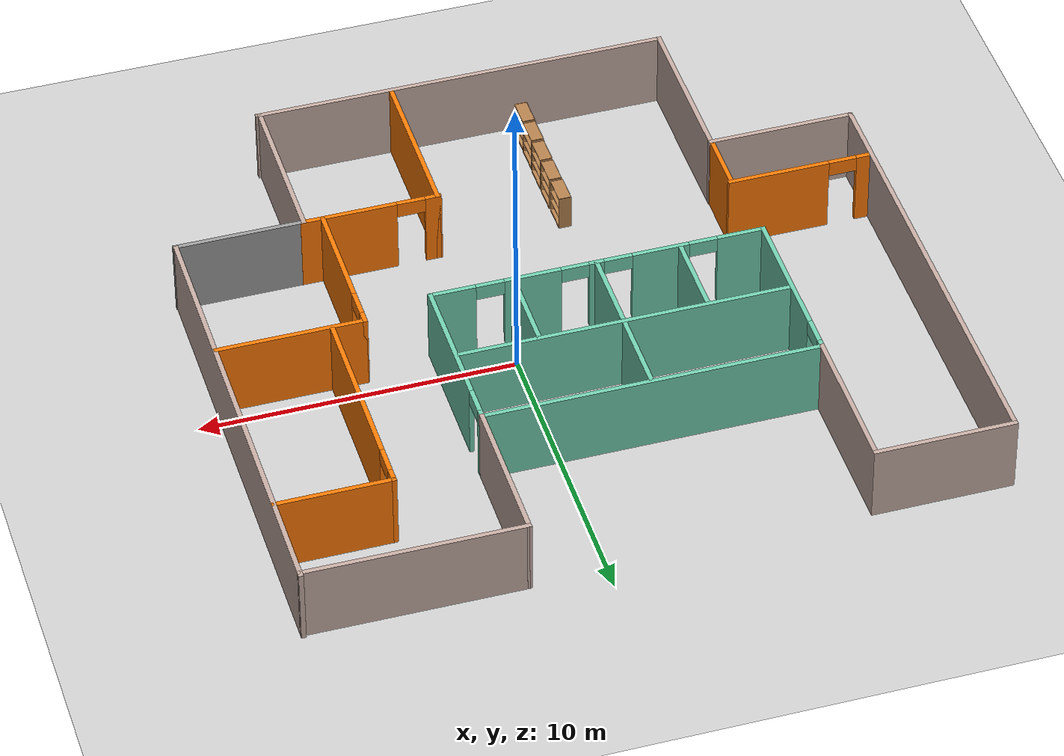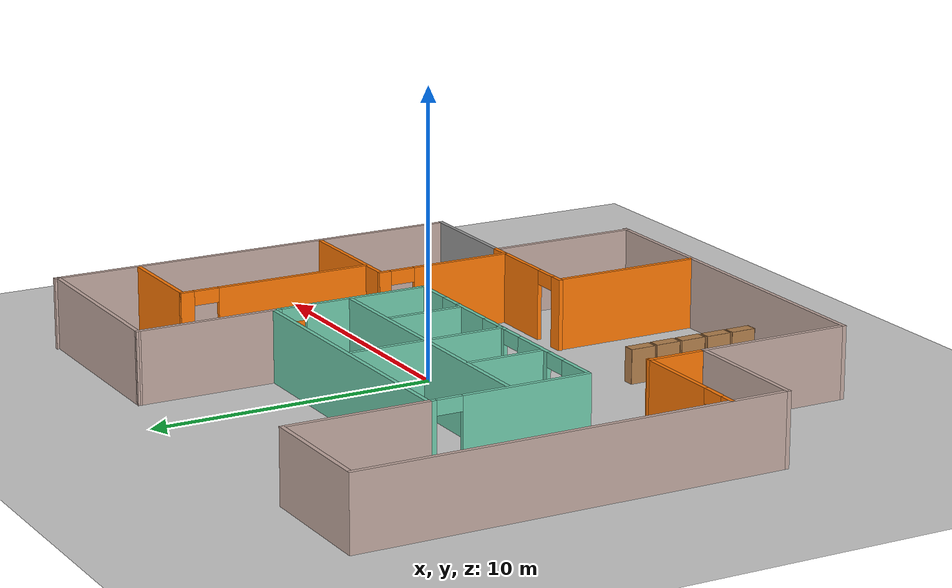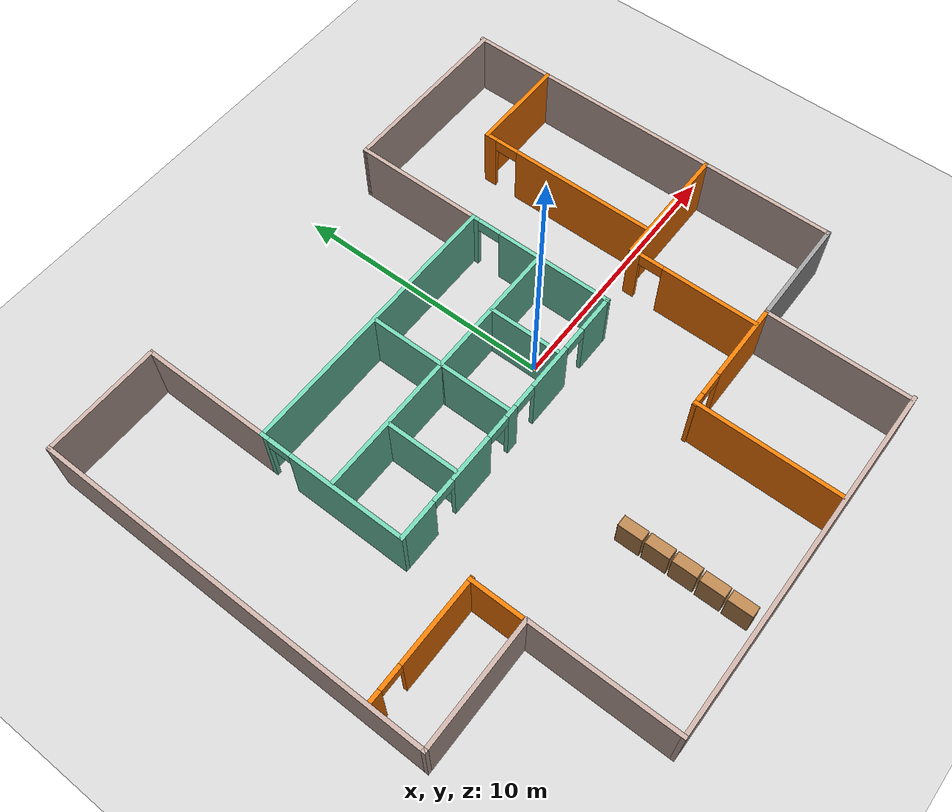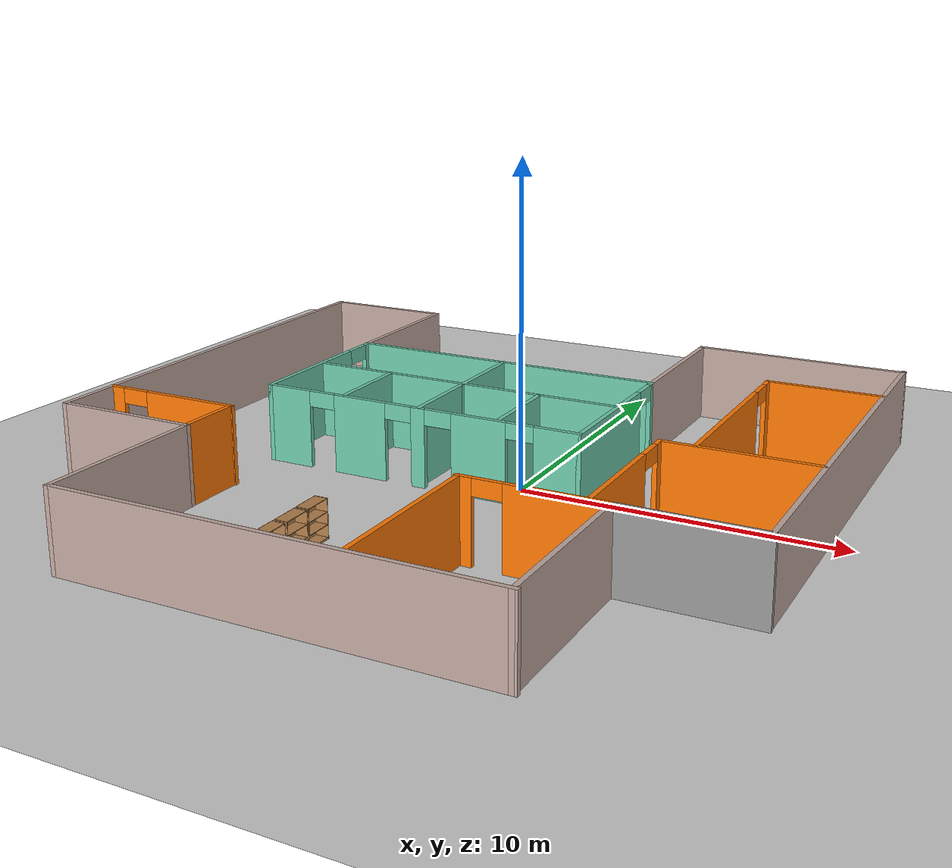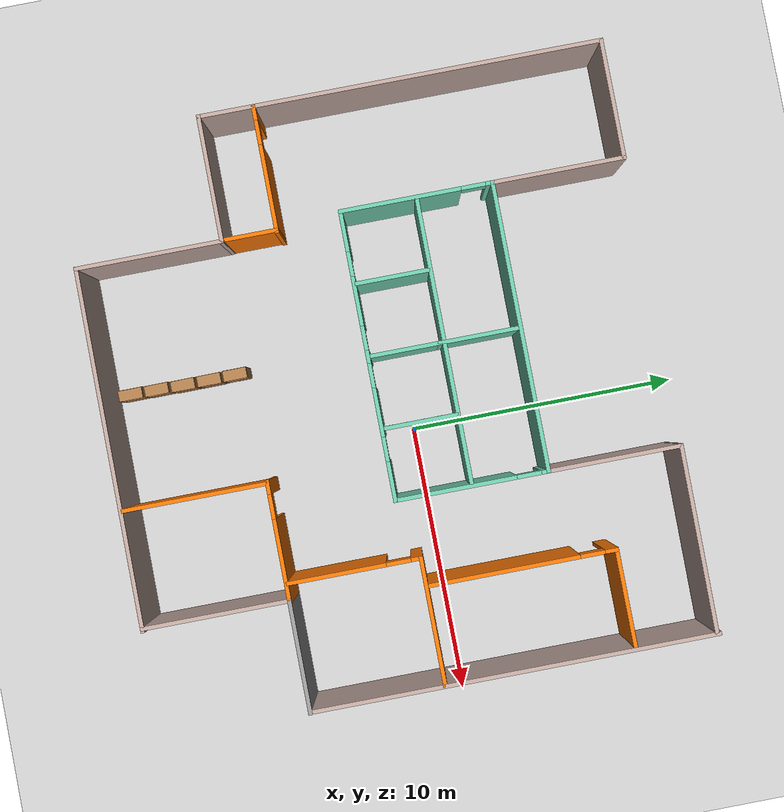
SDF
<sdf version="1.6">
 <world name="default">
  <model name="ground_plane">
   <static>1</static>
   <link name="link">
    <collision name="collision">
     <geometry><plane><normal>0 0 1</normal><size>100 100</size></plane></geometry>
     <surface>
      <contact><collide_bitmask>65535</collide_bitmask></contact>
      <friction><ode><mu>100</mu><mu2>50</mu2></ode></friction>
     </surface>
    </collision>
    <visual name="visual">
     <cast_shadows>0</cast_shadows>
     <geometry><plane><normal>0 0 1</normal><size>100 100</size></plane></geometry>
     <material>
      <script><uri>file://media/materials/scripts/gazebo.material</uri><name>Gazebo/Grey</name></script>
     </material>
    </visual>
   </link>
  </model>
  <model name="Building">
   <pose>-1.6637 -0.76117 0 0 -0 0</pose>
   <link name="Wall_35">
    <collision name="Wall_35_Collision">
     <geometry><box><size>4.5 0.15 2.5</size></box></geometry>
     <pose>0 0 1.25 0 -0 0</pose>
    </collision>
    <visual name="Wall_35_Visual">
     <pose>0 0 1.25 0 -0 0</pose>
     <geometry><box><size>4.5 0.15 2.5</size></box></geometry>
     <material>
      <script><uri>file://media/materials/scripts/gazebo.material</uri><name>Gazebo/Grey</name></script>
      <ambient>0.760784 0.662745 0.627451 1</ambient>
     </material>
     <meta><layer>0</layer></meta>
    </visual>
    <pose>-8.725 10.0804 0 0 -0 0</pose>
   </link>
   <link name="Wall_36">
    <collision name="Wall_36_Collision">
     <geometry><box><size>5 0.15 2.5</size></box></geometry>
     <pose>0 0 1.25 0 -0 0</pose>
    </collision>
    <visual name="Wall_36_Visual">
     <pose>0 0 1.25 0 -0 0</pose>
     <geometry><box><size>5 0.15 2.5</size></box></geometry>
     <material>
      <script><uri>file://media/materials/scripts/gazebo.material</uri><name>Gazebo/Grey</name></script>
      <ambient>0.760784 0.662745 0.627451 1</ambient>
     </material>
     <meta><layer>0</layer></meta>
    </visual>
    <pose>-6.55 7.65538 0 0 0 -1.5708</pose>
   </link>
   <link name="Wall_37">
    <collision name="Wall_37_Collision">
     <geometry><box><size>10.75 0.15 2.5</size></box></geometry>
     <pose>0 0 1.25 0 -0 0</pose>
    </collision>
    <visual name="Wall_37_Visual">
     <pose>0 0 1.25 0 -0 0</pose>
     <geometry><box><size>10.75 0.15 2.5</size></box></geometry>
     <material>
      <script><uri>file://media/materials/scripts/gazebo.material</uri><name>Gazebo/Grey</name></script>
      <ambient>0.435294 0.796078 0.67451 1</ambient>
     </material>
     <meta><layer>0</layer></meta>
    </visual>
    <pose>-1.25 5.23038 0 0 -0 0</pose>
   </link>
   <link name="Wall_38">
    <collision name="Wall_38_Collision">
     <geometry><box><size>5 0.15 2.5</size></box></geometry>
     <pose>0 0 1.25 0 -0 0</pose>
    </collision>
    <visual name="Wall_38_Visual">
     <pose>0 0 1.25 0 -0 0</pose>
     <geometry><box><size>5 0.15 2.5</size></box></geometry>
     <material>
      <script><uri>file://media/materials/scripts/gazebo.material</uri><name>Gazebo/Grey</name></script>
      <ambient>0.760784 0.662745 0.627451 1</ambient>
     </material>
     <meta><layer>0</layer></meta>
    </visual>
    <pose>4.05 7.65538 0 0 -0 1.5708</pose>
   </link>
   <link name="Wall_39">
    <collision name="Wall_39_Collision">
     <geometry><box><size>6.98446 0.15 2.5</size></box></geometry>
     <pose>0 0 1.25 0 -0 0</pose>
    </collision>
    <visual name="Wall_39_Visual">
     <pose>0 0 1.25 0 -0 0</pose>
     <geometry><box><size>6.98446 0.15 2.5</size></box></geometry>
     <material>
      <script><uri>file://media/materials/scripts/gazebo.material</uri><name>Gazebo/Grey</name></script>
      <ambient>0.760784 0.662745 0.627451 1</ambient>
     </material>
     <meta><layer>0</layer></meta>
    </visual>
    <pose>7.46718 10.0598 0 0 0 -0.006031</pose>
   </link>
   <link name="Wall_40">
    <collision name="Wall_40_Collision">
     <geometry><box><size>15 0.15 2.5</size></box></geometry>
     <pose>0 0 1.25 0 -0 0</pose>
    </collision>
    <visual name="Wall_40_Visual">
     <pose>0 0 1.25 0 -0 0</pose>
     <geometry><box><size>15 0.15 2.5</size></box></geometry>
     <material>
      <script><uri>file://media/materials/scripts/gazebo.material</uri><name>Gazebo/Grey</name></script>
      <ambient>0.760784 0.662745 0.627451 1</ambient>
     </material>
     <meta><layer>0</layer></meta>
    </visual>
    <pose>10.8843 2.69462 0 0 0 -1.5708</pose>
   </link>
   <link name="Wall_42">
    <collision name="Wall_42_Collision">
     <geometry><box><size>5.5 0.15 2.5</size></box></geometry>
     <pose>0 0 1.25 0 -0 0</pose>
    </collision>
    <visual name="Wall_42_Visual">
     <pose>0 0 1.25 0 -0 0</pose>
     <geometry><box><size>5.5 0.15 2.5</size></box></geometry>
     <material>
      <script><uri>file://media/materials/scripts/gazebo.material</uri><name>Gazebo/Grey</name></script>
      <ambient>0.760784 0.662745 0.627451 1</ambient>
     </material>
     <meta><layer>0</layer></meta>
    </visual>
    <pose>6.84725 -7.44462 0 0 0 -1.5708</pose>
   </link>
   <link name="Wall_43">
    <collision name="Wall_43_Collision">
     <geometry><box><size>13.368 0.15 2.5</size></box></geometry>
     <pose>0 0 1.25 0 -0 0</pose>
    </collision>
    <visual name="Wall_43_Visual">
     <pose>0 0 1.25 0 -0 0</pose>
     <geometry><box><size>13.368 0.15 2.5</size></box></geometry>
     <material>
      <script><uri>file://media/materials/scripts/gazebo.material</uri><name>Gazebo/Grey</name></script>
      <ambient>0.760784 0.662745 0.627451 1</ambient>
     </material>
     <meta><layer>0</layer></meta>
    </visual>
    <pose>0.309006 -10.1196 0 0 -0 3.14159</pose>
   </link>
   <link name="Wall_44">
    <collision name="Wall_44_Collision">
     <geometry><box><size>5.5 0.15 2.5</size></box></geometry>
     <pose>0 0 1.25 0 -0 0</pose>
    </collision>
    <visual name="Wall_44_Visual">
     <pose>0 0 1.25 0 -0 0</pose>
     <geometry><box><size>5.5 0.15 2.5</size></box></geometry>
     <material>
      <script><uri>file://media/materials/scripts/gazebo.material</uri><name>Gazebo/Grey</name></script>
      <ambient>0.760784 0.662745 0.627451 1</ambient>
     </material>
     <meta><layer>0</layer></meta>
    </visual>
    <pose>-6.3 -7.44462 0 0 -0 1.5708</pose>
   </link>
   <link name="Wall_45">
    <collision name="Wall_45_Collision">
     <geometry><box><size>4.75 0.15 2.5</size></box></geometry>
     <pose>0 0 1.25 0 -0 0</pose>
    </collision>
    <visual name="Wall_45_Visual">
     <pose>0 0 1.25 0 -0 0</pose>
     <geometry><box><size>4.75 0.15 2.5</size></box></geometry>
     <material>
      <script><uri>file://media/materials/scripts/gazebo.material</uri><name>Gazebo/Grey</name></script>
      <ambient>0.760784 0.662745 0.627451 1</ambient>
     </material>
     <meta><layer>0</layer></meta>
    </visual>
    <pose>-8.6 -4.76962 0 0 -0 3.14159</pose>
   </link>
   <link name="Wall_46">
    <collision name="Wall_46_Collision">
     <geometry><box><size>15 0.15 2.5</size></box></geometry>
     <pose>0 0 1.25 0 -0 0</pose>
    </collision>
    <visual name="Wall_46_Visual">
     <pose>0 0 1.25 0 -0 0</pose>
     <geometry><box><size>15 0.15 2.5</size></box></geometry>
     <material>
      <script><uri>file://media/materials/scripts/gazebo.material</uri><name>Gazebo/Grey</name></script>
      <ambient>0.760784 0.662745 0.627451 1</ambient>
     </material>
     <meta><layer>0</layer></meta>
    </visual>
    <pose>-10.9 2.65538 0 0 -0 1.5708</pose>
   </link>
   <link name="Wall_48">
    <pose>-6.55 2.43038 0 0 0 -1.5708</pose>
    <visual name="Wall_48_Visual_0">
     <pose>-2.70872 0 1.25 0 -0 0</pose>
     <geometry><box><size>0.332563 0.15 2.5</size></box></geometry>
     <material>
      <script><uri>file://media/materials/scripts/gazebo.material</uri><name>Gazebo/Grey</name></script>
      <ambient>0.435294 0.796078 0.67451 1</ambient>
     </material>
     <meta><layer>0</layer></meta>
    </visual>
    <collision name="Wall_48_Collision_0">
     <geometry><box><size>0.332563 0.15 2.5</size></box></geometry>
     <pose>-2.70872 0 1.25 0 -0 0</pose>
    </collision>
    <visual name="Wall_48_Visual_1">
     <pose>0.616281 0 1.25 0 -0 0</pose>
     <geometry><box><size>4.51744 0.15 2.5</size></box></geometry>
     <material>
      <script><uri>file://media/materials/scripts/gazebo.material</uri><name>Gazebo/Grey</name></script>
      <ambient>0.435294 0.796078 0.67451 1</ambient>
     </material>
     <meta><layer>0</layer></meta>
    </visual>
    <collision name="Wall_48_Collision_1">
     <geometry><box><size>4.51744 0.15 2.5</size></box></geometry>
     <pose>0.616281 0 1.25 0 -0 0</pose>
    </collision>
    <visual name="Wall_48_Visual_2">
     <pose>-2.09244 0 2.25 0 -0 0</pose>
     <geometry><box><size>0.9 0.15 0.5</size></box></geometry>
     <material>
      <script><uri>file://media/materials/scripts/gazebo.material</uri><name>Gazebo/Grey</name></script>
      <ambient>0.435294 0.796078 0.67451 1</ambient>
     </material>
     <meta><layer>0</layer></meta>
    </visual>
    <collision name="Wall_48_Collision_2">
     <geometry><box><size>0.9 0.15 0.5</size></box></geometry>
     <pose>-2.09244 0 2.25 0 -0 0</pose>
    </collision>
   </link>
   <link name="Wall_49">
    <pose>-1.25 -0.36962 0 0 -0 0</pose>
    <visual name="Wall_49_Visual_0">
     <pose>-4.59292 0 1.25 0 -0 0</pose>
     <geometry><box><size>1.56416 0.15 2.5</size></box></geometry>
     <material>
      <script><uri>file://media/materials/scripts/gazebo.material</uri><name>Gazebo/Grey</name></script>
      <ambient>0.435294 0.796078 0.67451 1</ambient>
     </material>
     <meta><layer>0</layer></meta>
    </visual>
    <collision name="Wall_49_Collision_0">
     <geometry><box><size>1.56416 0.15 2.5</size></box></geometry>
     <pose>-4.59292 0 1.25 0 -0 0</pose>
    </collision>
    <visual name="Wall_49_Visual_1">
     <pose>-2.00006 0 1.25 0 -0 0</pose>
     <geometry><box><size>1.82155 0.15 2.5</size></box></geometry>
     <material>
      <script><uri>file://media/materials/scripts/gazebo.material</uri><name>Gazebo/Grey</name></script>
      <ambient>0.435294 0.796078 0.67451 1</ambient>
     </material>
     <meta><layer>0</layer></meta>
    </visual>
    <collision name="Wall_49_Collision_1">
     <geometry><box><size>1.82155 0.15 2.5</size></box></geometry>
     <pose>-2.00006 0 1.25 0 -0 0</pose>
    </collision>
    <visual name="Wall_49_Visual_2">
     <pose>0.046812 0 1.25 0 -0 0</pose>
     <geometry><box><size>0.472208 0.15 2.5</size></box></geometry>
     <material>
      <script><uri>file://media/materials/scripts/gazebo.material</uri><name>Gazebo/Grey</name></script>
      <ambient>0.435294 0.796078 0.67451 1</ambient>
     </material>
     <meta><layer>0</layer></meta>
    </visual>
    <collision name="Wall_49_Collision_2">
     <geometry><box><size>0.472208 0.15 2.5</size></box></geometry>
     <pose>0.046812 0 1.25 0 -0 0</pose>
    </collision>
    <visual name="Wall_49_Visual_3">
     <pose>2.08225 0 1.25 0 -0 0</pose>
     <geometry><box><size>1.79868 0.15 2.5</size></box></geometry>
     <material>
      <script><uri>file://media/materials/scripts/gazebo.material</uri><name>Gazebo/Grey</name></script>
      <ambient>0.435294 0.796078 0.67451 1</ambient>
     </material>
     <meta><layer>0</layer></meta>
    </visual>
    <collision name="Wall_49_Collision_3">
     <geometry><box><size>1.79868 0.15 2.5</size></box></geometry>
     <pose>2.08225 0 1.25 0 -0 0</pose>
    </collision>
    <visual name="Wall_49_Visual_4">
     <pose>4.6283 0 1.25 0 -0 0</pose>
     <geometry><box><size>1.49341 0.15 2.5</size></box></geometry>
     <material>
      <script><uri>file://media/materials/scripts/gazebo.material</uri><name>Gazebo/Grey</name></script>
      <ambient>0.435294 0.796078 0.67451 1</ambient>
     </material>
     <meta><layer>0</layer></meta>
    </visual>
    <collision name="Wall_49_Collision_4">
     <geometry><box><size>1.49341 0.15 2.5</size></box></geometry>
     <pose>4.6283 0 1.25 0 -0 0</pose>
    </collision>
    <visual name="Wall_49_Visual_5">
     <pose>-3.36084 0 2.25 0 -0 0</pose>
     <geometry><box><size>0.9 0.15 0.5</size></box></geometry>
     <material>
      <script><uri>file://media/materials/scripts/gazebo.material</uri><name>Gazebo/Grey</name></script>
      <ambient>0.435294 0.796078 0.67451 1</ambient>
     </material>
     <meta><layer>0</layer></meta>
    </visual>
    <collision name="Wall_49_Collision_5">
     <geometry><box><size>0.9 0.15 0.5</size></box></geometry>
     <pose>-3.36084 0 2.25 0 -0 0</pose>
    </collision>
    <visual name="Wall_49_Visual_6">
     <pose>-0.639292 0 2.25 0 -0 0</pose>
     <geometry><box><size>0.9 0.15 0.5</size></box></geometry>
     <material>
      <script><uri>file://media/materials/scripts/gazebo.material</uri><name>Gazebo/Grey</name></script>
      <ambient>0.435294 0.796078 0.67451 1</ambient>
     </material>
     <meta><layer>0</layer></meta>
    </visual>
    <collision name="Wall_49_Collision_6">
     <geometry><box><size>0.9 0.15 0.5</size></box></geometry>
     <pose>-0.639292 0 2.25 0 -0 0</pose>
    </collision>
    <visual name="Wall_49_Visual_7">
     <pose>0.732916 0 2.25 0 -0 0</pose>
     <geometry><box><size>0.9 0.15 0.5</size></box></geometry>
     <material>
      <script><uri>file://media/materials/scripts/gazebo.material</uri><name>Gazebo/Grey</name></script>
      <ambient>0.435294 0.796078 0.67451 1</ambient>
     </material>
     <meta><layer>0</layer></meta>
    </visual>
    <collision name="Wall_49_Collision_7">
     <geometry><box><size>0.9 0.15 0.5</size></box></geometry>
     <pose>0.732916 0 2.25 0 -0 0</pose>
    </collision>
    <visual name="Wall_49_Visual_8">
     <pose>3.43159 0 2.25 0 -0 0</pose>
     <geometry><box><size>0.9 0.15 0.5</size></box></geometry>
     <material>
      <script><uri>file://media/materials/scripts/gazebo.material</uri><name>Gazebo/Grey</name></script>
      <ambient>0.435294 0.796078 0.67451 1</ambient>
     </material>
     <meta><layer>0</layer></meta>
    </visual>
    <collision name="Wall_49_Collision_8">
     <geometry><box><size>0.9 0.15 0.5</size></box></geometry>
     <pose>3.43159 0 2.25 0 -0 0</pose>
    </collision>
   </link>
   <link name="Wall_50">
    <pose>4.05 2.43038 0 0 -0 1.5708</pose>
    <visual name="Wall_50_Visual_0">
     <pose>-0.616281 0 1.25 0 -0 0</pose>
     <geometry><box><size>4.51744 0.15 2.5</size></box></geometry>
     <material>
      <script><uri>file://media/materials/scripts/gazebo.material</uri><name>Gazebo/Grey</name></script>
      <ambient>0.435294 0.796078 0.67451 1</ambient>
     </material>
     <meta><layer>0</layer></meta>
    </visual>
    <collision name="Wall_50_Collision_0">
     <geometry><box><size>4.51744 0.15 2.5</size></box></geometry>
     <pose>-0.616281 0 1.25 0 -0 0</pose>
    </collision>
    <visual name="Wall_50_Visual_1">
     <pose>2.70872 0 1.25 0 -0 0</pose>
     <geometry><box><size>0.332563 0.15 2.5</size></box></geometry>
     <material>
      <script><uri>file://media/materials/scripts/gazebo.material</uri><name>Gazebo/Grey</name></script>
      <ambient>0.435294 0.796078 0.67451 1</ambient>
     </material>
     <meta><layer>0</layer></meta>
    </visual>
    <collision name="Wall_50_Collision_1">
     <geometry><box><size>0.332563 0.15 2.5</size></box></geometry>
     <pose>2.70872 0 1.25 0 -0 0</pose>
    </collision>
    <visual name="Wall_50_Visual_2">
     <pose>2.09244 0 2.25 0 -0 0</pose>
     <geometry><box><size>0.9 0.15 0.5</size></box></geometry>
     <material>
      <script><uri>file://media/materials/scripts/gazebo.material</uri><name>Gazebo/Grey</name></script>
      <ambient>0.435294 0.796078 0.67451 1</ambient>
     </material>
     <meta><layer>0</layer></meta>
    </visual>
    <collision name="Wall_50_Collision_2">
     <geometry><box><size>0.9 0.15 0.5</size></box></geometry>
     <pose>2.09244 0 2.25 0 -0 0</pose>
    </collision>
   </link>
   <link name="Wall_52">
    <collision name="Wall_52_Collision">
     <geometry><box><size>10.5 0.15 2.5</size></box></geometry>
     <pose>0 0 1.25 0 -0 0</pose>
    </collision>
    <visual name="Wall_52_Visual">
     <pose>0 0 1.25 0 -0 0</pose>
     <geometry><box><size>10.5 0.15 2.5</size></box></geometry>
     <material>
      <script><uri>file://media/materials/scripts/gazebo.material</uri><name>Gazebo/Grey</name></script>
      <ambient>0.435294 0.796078 0.67451 1</ambient>
     </material>
     <meta><layer>0</layer></meta>
    </visual>
    <pose>-1.24961 2.43154 0 0 -0 0</pose>
   </link>
   <link name="Wall_56">
    <collision name="Wall_56_Collision">
     <geometry><box><size>2.75 0.15 2.5</size></box></geometry>
     <pose>0 0 1.25 0 -0 0</pose>
    </collision>
    <visual name="Wall_56_Visual">
     <pose>0 0 1.25 0 -0 0</pose>
     <geometry><box><size>2.75 0.15 2.5</size></box></geometry>
     <material>
      <script><uri>file://media/materials/scripts/gazebo.material</uri><name>Gazebo/Grey</name></script>
      <ambient>0.435294 0.796078 0.67451 1</ambient>
     </material>
     <meta><layer>0</layer></meta>
    </visual>
    <pose>-1.20548 0.975756 0 0 0 -1.5708</pose>
   </link>
   <link name="Wall_59">
    <collision name="Wall_59_Collision">
     <geometry><box><size>2.75 0.15 2.5</size></box></geometry>
     <pose>0 0 1.25 0 -0 0</pose>
    </collision>
    <visual name="Wall_59_Visual">
     <pose>0 0 1.25 0 -0 0</pose>
     <geometry><box><size>2.75 0.15 2.5</size></box></geometry>
     <material>
      <script><uri>file://media/materials/scripts/gazebo.material</uri><name>Gazebo/Grey</name></script>
      <ambient>0.435294 0.796078 0.67451 1</ambient>
     </material>
     <meta><layer>0</layer></meta>
    </visual>
    <pose>-3.87235 1.03442 0 0 0 -1.5708</pose>
   </link>
   <link name="Wall_61">
    <collision name="Wall_61_Collision">
     <geometry><box><size>2.75 0.15 2.5</size></box></geometry>
     <pose>0 0 1.25 0 -0 0</pose>
    </collision>
    <visual name="Wall_61_Visual">
     <pose>0 0 1.25 0 -0 0</pose>
     <geometry><box><size>2.75 0.15 2.5</size></box></geometry>
     <material>
      <script><uri>file://media/materials/scripts/gazebo.material</uri><name>Gazebo/Grey</name></script>
      <ambient>0.435294 0.796078 0.67451 1</ambient>
     </material>
     <meta><layer>0</layer></meta>
    </visual>
    <pose>1.44292 1.07244 0 0 0 -1.5708</pose>
   </link>
   <link name="Wall_63">
    <collision name="Wall_63_Collision">
     <geometry><box><size>3 0.15 2.5</size></box></geometry>
     <pose>0 0 1.25 0 -0 0</pose>
    </collision>
    <visual name="Wall_63_Visual">
     <pose>0 0 1.25 0 -0 0</pose>
     <geometry><box><size>3 0.15 2.5</size></box></geometry>
     <material>
      <script><uri>file://media/materials/scripts/gazebo.material</uri><name>Gazebo/Grey</name></script>
      <ambient>0.435294 0.796078 0.67451 1</ambient>
     </material>
     <meta><layer>0</layer></meta>
    </visual>
    <pose>-1.20548 3.70076 0 0 -0 1.5708</pose>
   </link>
   <link name="Wall_65">
    <collision name="Wall_65_Collision">
     <geometry><box><size>4.13199 0.15 2.5</size></box></geometry>
     <pose>0 0 1.25 0 -0 0</pose>
    </collision>
    <visual name="Wall_65_Visual">
     <pose>0 0 1.25 0 -0 0</pose>
     <geometry><box><size>4.13199 0.15 2.5</size></box></geometry>
     <material>
      <script><uri>file://media/materials/scripts/gazebo.material</uri><name>Gazebo/Grey</name></script>
      <ambient>1 1 1 1</ambient>
     </material>
     <meta><layer>0</layer></meta>
    </visual>
    <pose>8.90901 -4.76962 0 0 -0 0</pose>
   </link>
   <link name="Wall_67">
    <collision name="Wall_67_Collision">
     <geometry><box><size>5.40695 0.15 2.5</size></box></geometry>
     <pose>0 0 1.25 0 -0 0</pose>
    </collision>
    <visual name="Wall_67_Visual">
     <pose>0 0 1.25 0 -0 0</pose>
     <geometry><box><size>5.40695 0.15 2.5</size></box></geometry>
     <material>
      <script><uri>file://media/materials/scripts/gazebo.material</uri><name>Gazebo/Grey</name></script>
      <ambient>0.996078 0.47451 0.0196078 1</ambient>
     </material>
     <meta><layer>0</layer></meta>
    </visual>
    <pose>2.58189 -7.39438 0 0 -0 1.5708</pose>
   </link>
   <link name="Wall_68">
    <pose>4.71037 -4.7659 0 0 -0 0</pose>
    <visual name="Wall_68_Visual_0">
     <pose>-1.98659 0 1.25 0 -0 0</pose>
     <geometry><box><size>0.526825 0.15 2.5</size></box></geometry>
     <material>
      <script><uri>file://media/materials/scripts/gazebo.material</uri><name>Gazebo/Grey</name></script>
      <ambient>0.996078 0.47451 0.0196078 1</ambient>
     </material>
     <meta><layer>0</layer></meta>
    </visual>
    <collision name="Wall_68_Collision_0">
     <geometry><box><size>0.526825 0.15 2.5</size></box></geometry>
     <pose>-1.98659 0 1.25 0 -0 0</pose>
    </collision>
    <visual name="Wall_68_Visual_1">
     <pose>0.713412 0 1.25 0 -0 0</pose>
     <geometry><box><size>3.07317 0.15 2.5</size></box></geometry>
     <material>
      <script><uri>file://media/materials/scripts/gazebo.material</uri><name>Gazebo/Grey</name></script>
      <ambient>0.996078 0.47451 0.0196078 1</ambient>
     </material>
     <meta><layer>0</layer></meta>
    </visual>
    <collision name="Wall_68_Collision_1">
     <geometry><box><size>3.07317 0.15 2.5</size></box></geometry>
     <pose>0.713412 0 1.25 0 -0 0</pose>
    </collision>
    <visual name="Wall_68_Visual_2">
     <pose>-1.27317 0 2.25 0 -0 0</pose>
     <geometry><box><size>0.9 0.15 0.5</size></box></geometry>
     <material>
      <script><uri>file://media/materials/scripts/gazebo.material</uri><name>Gazebo/Grey</name></script>
      <ambient>0.996078 0.47451 0.0196078 1</ambient>
     </material>
     <meta><layer>0</layer></meta>
    </visual>
    <collision name="Wall_68_Collision_2">
     <geometry><box><size>0.9 0.15 0.5</size></box></geometry>
     <pose>-1.27317 0 2.25 0 -0 0</pose>
    </collision>
   </link>
   <link name="Wall_70">
    <pose>6.24178 -2.28341 0 0 -0 1.5708</pose>
    <visual name="Wall_70_Visual_0">
     <pose>-0.668588 0 1.25 0 -0 0</pose>
     <geometry><box><size>3.66283 0.15 2.5</size></box></geometry>
     <material>
      <script><uri>file://media/materials/scripts/gazebo.material</uri><name>Gazebo/Grey</name></script>
      <ambient>0.996078 0.47451 0.0196078 1</ambient>
     </material>
     <meta><layer>0</layer></meta>
    </visual>
    <collision name="Wall_70_Collision_0">
     <geometry><box><size>3.66283 0.15 2.5</size></box></geometry>
     <pose>-0.668588 0 1.25 0 -0 0</pose>
    </collision>
    <visual name="Wall_70_Visual_1">
     <pose>2.28141 0 1.25 0 -0 0</pose>
     <geometry><box><size>0.437175 0.15 2.5</size></box></geometry>
     <material>
      <script><uri>file://media/materials/scripts/gazebo.material</uri><name>Gazebo/Grey</name></script>
      <ambient>0.996078 0.47451 0.0196078 1</ambient>
     </material>
     <meta><layer>0</layer></meta>
    </visual>
    <collision name="Wall_70_Collision_1">
     <geometry><box><size>0.437175 0.15 2.5</size></box></geometry>
     <pose>2.28141 0 1.25 0 -0 0</pose>
    </collision>
    <visual name="Wall_70_Visual_2">
     <pose>1.61282 0 2.25 0 -0 0</pose>
     <geometry><box><size>0.9 0.15 0.5</size></box></geometry>
     <material>
      <script><uri>file://media/materials/scripts/gazebo.material</uri><name>Gazebo/Grey</name></script>
      <ambient>0.996078 0.47451 0.0196078 1</ambient>
     </material>
     <meta><layer>0</layer></meta>
    </visual>
    <collision name="Wall_70_Collision_2">
     <geometry><box><size>0.9 0.15 0.5</size></box></geometry>
     <pose>1.61282 0 2.25 0 -0 0</pose>
    </collision>
   </link>
   <link name="Wall_71">
    <collision name="Wall_71_Collision">
     <geometry><box><size>4.75 0.15 2.5</size></box></geometry>
     <pose>0 0 1.25 0 -0 0</pose>
    </collision>
    <visual name="Wall_71_Visual">
     <pose>0 0 1.25 0 -0 0</pose>
     <geometry><box><size>4.75 0.15 2.5</size></box></geometry>
     <material>
      <script><uri>file://media/materials/scripts/gazebo.material</uri><name>Gazebo/Grey</name></script>
      <ambient>0.996078 0.47451 0.0196078 1</ambient>
     </material>
     <meta><layer>0</layer></meta>
    </visual>
    <pose>8.54178 0.141587 0 0 -0 0</pose>
   </link>
   <link name="Wall_73">
    <pose>7.26632 3.65979 0 0 -0 1.5708</pose>
    <visual name="Wall_73_Visual_0">
     <pose>-0.697419 0 1.25 0 -0 0</pose>
     <geometry><box><size>5.60516 0.15 2.5</size></box></geometry>
     <material>
      <script><uri>file://media/materials/scripts/gazebo.material</uri><name>Gazebo/Grey</name></script>
      <ambient>0.996078 0.47451 0.0196078 1</ambient>
     </material>
     <meta><layer>0</layer></meta>
    </visual>
    <collision name="Wall_73_Collision_0">
     <geometry><box><size>5.60516 0.15 2.5</size></box></geometry>
     <pose>-0.697419 0 1.25 0 -0 0</pose>
    </collision>
    <visual name="Wall_73_Visual_1">
     <pose>3.25258 0 1.25 0 -0 0</pose>
     <geometry><box><size>0.494839 0.15 2.5</size></box></geometry>
     <material>
      <script><uri>file://media/materials/scripts/gazebo.material</uri><name>Gazebo/Grey</name></script>
      <ambient>0.996078 0.47451 0.0196078 1</ambient>
     </material>
     <meta><layer>0</layer></meta>
    </visual>
    <collision name="Wall_73_Collision_1">
     <geometry><box><size>0.494839 0.15 2.5</size></box></geometry>
     <pose>3.25258 0 1.25 0 -0 0</pose>
    </collision>
    <visual name="Wall_73_Visual_2">
     <pose>2.55516 0 2.25 0 -0 0</pose>
     <geometry><box><size>0.9 0.15 0.5</size></box></geometry>
     <material>
      <script><uri>file://media/materials/scripts/gazebo.material</uri><name>Gazebo/Grey</name></script>
      <ambient>0.996078 0.47451 0.0196078 1</ambient>
     </material>
     <meta><layer>0</layer></meta>
    </visual>
    <collision name="Wall_73_Collision_2">
     <geometry><box><size>0.9 0.15 0.5</size></box></geometry>
     <pose>2.55516 0 2.25 0 -0 0</pose>
    </collision>
   </link>
   <link name="Wall_74">
    <collision name="Wall_74_Collision">
     <geometry><box><size>3.75 0.15 2.5</size></box></geometry>
     <pose>0 0 1.25 0 -0 0</pose>
    </collision>
    <visual name="Wall_74_Visual">
     <pose>0 0 1.25 0 -0 0</pose>
     <geometry><box><size>3.75 0.15 2.5</size></box></geometry>
     <material>
      <script><uri>file://media/materials/scripts/gazebo.material</uri><name>Gazebo/Grey</name></script>
      <ambient>0.996078 0.47451 0.0196078 1</ambient>
     </material>
     <meta><layer>0</layer></meta>
    </visual>
    <pose>9.06632 7.08479 0 0 -0 0</pose>
   </link>
   <link name="Wall_78">
    <pose>-8.57396 -2.7529 0 0 -0 0</pose>
    <visual name="Wall_78_Visual_0">
     <pose>-2.09 0 1.25 0 -0 0</pose>
     <geometry><box><size>0.555478 0.15 2.5</size></box></geometry>
     <material>
      <script><uri>file://media/materials/scripts/gazebo.material</uri><name>Gazebo/Grey</name></script>
      <ambient>0.996078 0.47451 0.0196078 1</ambient>
     </material>
     <meta><layer>0</layer></meta>
    </visual>
    <collision name="Wall_78_Collision_0">
     <geometry><box><size>0.555478 0.15 2.5</size></box></geometry>
     <pose>-2.09 0 1.25 0 -0 0</pose>
    </collision>
    <visual name="Wall_78_Visual_1">
     <pose>0.727739 0 1.25 0 -0 0</pose>
     <geometry><box><size>3.27999 0.15 2.5</size></box></geometry>
     <material>
      <script><uri>file://media/materials/scripts/gazebo.material</uri><name>Gazebo/Grey</name></script>
      <ambient>0.996078 0.47451 0.0196078 1</ambient>
     </material>
     <meta><layer>0</layer></meta>
    </visual>
    <collision name="Wall_78_Collision_1">
     <geometry><box><size>3.27999 0.15 2.5</size></box></geometry>
     <pose>0.727739 0 1.25 0 -0 0</pose>
    </collision>
    <visual name="Wall_78_Visual_2">
     <pose>-1.36226 0 2.25 0 -0 0</pose>
     <geometry><box><size>0.9 0.15 0.5</size></box></geometry>
     <material>
      <script><uri>file://media/materials/scripts/gazebo.material</uri><name>Gazebo/Grey</name></script>
      <ambient>0.996078 0.47451 0.0196078 1</ambient>
     </material>
     <meta><layer>0</layer></meta>
    </visual>
    <collision name="Wall_78_Collision_2">
     <geometry><box><size>0.9 0.15 0.5</size></box></geometry>
     <pose>-1.36226 0 2.25 0 -0 0</pose>
    </collision>
   </link>
   <link name="Wall_80">
    <collision name="Wall_80_Collision">
     <geometry><box><size>2 0.15 2.5</size></box></geometry>
     <pose>0 0 1.25 0 -0 0</pose>
    </collision>
    <visual name="Wall_80_Visual">
     <pose>0 0 1.25 0 -0 0</pose>
     <geometry><box><size>2 0.15 2.5</size></box></geometry>
     <material>
      <script><uri>file://media/materials/scripts/gazebo.material</uri><name>Gazebo/Grey</name></script>
      <ambient>0.996078 0.47451 0.0196078 1</ambient>
     </material>
     <meta><layer>0</layer></meta>
    </visual>
    <pose>-6.32169 -3.6779 0 0 0 -1.5708</pose>
   </link>
   <static>1</static>
  </model>
  <model name="bookshelf_clone_3">
   <static>1</static>
   <link name="link">
    <inertial><mass>1</mass></inertial>
    <collision name="back">
     <pose>0 0.005 0.6 0 -0 0</pose>
     <geometry><box><size>0.9 0.01 1.2</size></box></geometry>
    </collision>
    <visual name="visual1">
     <pose>0 0.005 0.6 0 -0 0</pose>
     <geometry><box><size>0.9 0.01 1.2</size></box></geometry>
     <material>
      <script><uri>file://media/materials/scripts/gazebo.material</uri><name>Gazebo/Wood</name></script>
     </material>
    </visual>
    <collision name="left_side">
     <pose>0.45 -0.195 0.6 0 -0 0</pose>
     <geometry><box><size>0.02 0.4 1.2</size></box></geometry>
    </collision>
    <visual name="visual2">
     <pose>0.45 -0.195 0.6 0 -0 0</pose>
     <geometry><box><size>0.02 0.4 1.2</size></box></geometry>
     <material>
      <script><uri>file://media/materials/scripts/gazebo.material</uri><name>Gazebo/Wood</name></script>
     </material>
    </visual>
    <collision name="right_side">
     <pose>-0.45 -0.195 0.6 0 -0 0</pose>
     <geometry><box><size>0.02 0.4 1.2</size></box></geometry>
    </collision>
    <visual name="visual3">
     <pose>-0.45 -0.195 0.6 0 -0 0</pose>
     <geometry><box><size>0.02 0.4 1.2</size></box></geometry>
     <material>
      <script><uri>file://media/materials/scripts/gazebo.material</uri><name>Gazebo/Wood</name></script>
     </material>
    </visual>
    <collision name="bottom">
     <pose>0 -0.195 0.03 0 -0 0</pose>
     <geometry><box><size>0.88 0.4 0.06</size></box></geometry>
    </collision>
    <visual name="visual4">
     <pose>0 -0.195 0.03 0 -0 0</pose>
     <geometry><box><size>0.88 0.4 0.06</size></box></geometry>
     <material>
      <script><uri>file://media/materials/scripts/gazebo.material</uri><name>Gazebo/Wood</name></script>
     </material>
    </visual>
    <collision name="top">
     <pose>0 -0.195 1.19 0 -0 0</pose>
     <geometry><box><size>0.88 0.4 0.02</size></box></geometry>
    </collision>
    <visual name="visual5">
     <pose>0 -0.195 1.19 0 -0 0</pose>
     <geometry><box><size>0.88 0.4 0.02</size></box></geometry>
     <material>
      <script><uri>file://media/materials/scripts/gazebo.material</uri><name>Gazebo/Wood</name></script>
     </material>
    </visual>
    <collision name="low_shelf">
     <pose>0 -0.195 0.43 0 -0 0</pose>
     <geometry><box><size>0.88 0.4 0.02</size></box></geometry>
    </collision>
    <visual name="visual6">
     <pose>0 -0.195 0.43 0 -0 0</pose>
     <geometry><box><size>0.88 0.4 0.02</size></box></geometry>
     <material>
      <script><uri>file://media/materials/scripts/gazebo.material</uri><name>Gazebo/Wood</name></script>
     </material>
    </visual>
    <collision name="high_shelf">
     <pose>0 -0.195 0.8 0 -0 0</pose>
     <geometry><box><size>0.88 0.4 0.02</size></box></geometry>
    </collision>
    <visual name="visual7">
     <pose>0 -0.195 0.8 0 -0 0</pose>
     <geometry><box><size>0.88 0.4 0.02</size></box></geometry>
     <material>
      <script><uri>file://media/materials/scripts/gazebo.material</uri><name>Gazebo/Wood</name></script>
     </material>
    </visual>
   </link>
   <pose>-3.43505 -9.13064 0 0 -0 1.57639</pose>
  </model>
  <model name="bookshelf_clone_4">
   <static>1</static>
   <link name="link">
    <inertial><mass>1</mass></inertial>
    <collision name="back">
     <pose>0 0.005 0.6 0 -0 0</pose>
     <geometry><box><size>0.9 0.01 1.2</size></box></geometry>
    </collision>
    <visual name="visual1">
     <pose>0 0.005 0.6 0 -0 0</pose>
     <geometry><box><size>0.9 0.01 1.2</size></box></geometry>
     <material>
      <script><uri>file://media/materials/scripts/gazebo.material</uri><name>Gazebo/Wood</name></script>
     </material>
    </visual>
    <collision name="left_side">
     <pose>0.45 -0.195 0.6 0 -0 0</pose>
     <geometry><box><size>0.02 0.4 1.2</size></box></geometry>
    </collision>
    <visual name="visual2">
     <pose>0.45 -0.195 0.6 0 -0 0</pose>
     <geometry><box><size>0.02 0.4 1.2</size></box></geometry>
     <material>
      <script><uri>file://media/materials/scripts/gazebo.material</uri><name>Gazebo/Wood</name></script>
     </material>
    </visual>
    <collision name="right_side">
     <pose>-0.45 -0.195 0.6 0 -0 0</pose>
     <geometry><box><size>0.02 0.4 1.2</size></box></geometry>
    </collision>
    <visual name="visual3">
     <pose>-0.45 -0.195 0.6 0 -0 0</pose>
     <geometry><box><size>0.02 0.4 1.2</size></box></geometry>
     <material>
      <script><uri>file://media/materials/scripts/gazebo.material</uri><name>Gazebo/Wood</name></script>
     </material>
    </visual>
    <collision name="bottom">
     <pose>0 -0.195 0.03 0 -0 0</pose>
     <geometry><box><size>0.88 0.4 0.06</size></box></geometry>
    </collision>
    <visual name="visual4">
     <pose>0 -0.195 0.03 0 -0 0</pose>
     <geometry><box><size>0.88 0.4 0.06</size></box></geometry>
     <material>
      <script><uri>file://media/materials/scripts/gazebo.material</uri><name>Gazebo/Wood</name></script>
     </material>
    </visual>
    <collision name="top">
     <pose>0 -0.195 1.19 0 -0 0</pose>
     <geometry><box><size>0.88 0.4 0.02</size></box></geometry>
    </collision>
    <visual name="visual5">
     <pose>0 -0.195 1.19 0 -0 0</pose>
     <geometry><box><size>0.88 0.4 0.02</size></box></geometry>
     <material>
      <script><uri>file://media/materials/scripts/gazebo.material</uri><name>Gazebo/Wood</name></script>
     </material>
    </visual>
    <collision name="low_shelf">
     <pose>0 -0.195 0.43 0 -0 0</pose>
     <geometry><box><size>0.88 0.4 0.02</size></box></geometry>
    </collision>
    <visual name="visual6">
     <pose>0 -0.195 0.43 0 -0 0</pose>
     <geometry><box><size>0.88 0.4 0.02</size></box></geometry>
     <material>
      <script><uri>file://media/materials/scripts/gazebo.material</uri><name>Gazebo/Wood</name></script>
     </material>
    </visual>
    <collision name="high_shelf">
     <pose>0 -0.195 0.8 0 -0 0</pose>
     <geometry><box><size>0.88 0.4 0.02</size></box></geometry>
    </collision>
    <visual name="visual7">
     <pose>0 -0.195 0.8 0 -0 0</pose>
     <geometry><box><size>0.88 0.4 0.02</size></box></geometry>
     <material>
      <script><uri>file://media/materials/scripts/gazebo.material</uri><name>Gazebo/Wood</name></script>
     </material>
    </visual>
   </link>
   <pose>-3.42168 -8.13576 0 0 -0 1.57639</pose>
  </model>
  <model name="bookshelf_clone_5">
   <static>1</static>
   <link name="link">
    <inertial><mass>1</mass></inertial>
    <collision name="back">
     <pose>0 0.005 0.6 0 -0 0</pose>
     <geometry><box><size>0.9 0.01 1.2</size></box></geometry>
    </collision>
    <visual name="visual1">
     <pose>0 0.005 0.6 0 -0 0</pose>
     <geometry><box><size>0.9 0.01 1.2</size></box></geometry>
     <material>
      <script><uri>file://media/materials/scripts/gazebo.material</uri><name>Gazebo/Wood</name></script>
     </material>
    </visual>
    <collision name="left_side">
     <pose>0.45 -0.195 0.6 0 -0 0</pose>
     <geometry><box><size>0.02 0.4 1.2</size></box></geometry>
    </collision>
    <visual name="visual2">
     <pose>0.45 -0.195 0.6 0 -0 0</pose>
     <geometry><box><size>0.02 0.4 1.2</size></box></geometry>
     <material>
      <script><uri>file://media/materials/scripts/gazebo.material</uri><name>Gazebo/Wood</name></script>
     </material>
    </visual>
    <collision name="right_side">
     <pose>-0.45 -0.195 0.6 0 -0 0</pose>
     <geometry><box><size>0.02 0.4 1.2</size></box></geometry>
    </collision>
    <visual name="visual3">
     <pose>-0.45 -0.195 0.6 0 -0 0</pose>
     <geometry><box><size>0.02 0.4 1.2</size></box></geometry>
     <material>
      <script><uri>file://media/materials/scripts/gazebo.material</uri><name>Gazebo/Wood</name></script>
     </material>
    </visual>
    <collision name="bottom">
     <pose>0 -0.195 0.03 0 -0 0</pose>
     <geometry><box><size>0.88 0.4 0.06</size></box></geometry>
    </collision>
    <visual name="visual4">
     <pose>0 -0.195 0.03 0 -0 0</pose>
     <geometry><box><size>0.88 0.4 0.06</size></box></geometry>
     <material>
      <script><uri>file://media/materials/scripts/gazebo.material</uri><name>Gazebo/Wood</name></script>
     </material>
    </visual>
    <collision name="top">
     <pose>0 -0.195 1.19 0 -0 0</pose>
     <geometry><box><size>0.88 0.4 0.02</size></box></geometry>
    </collision>
    <visual name="visual5">
     <pose>0 -0.195 1.19 0 -0 0</pose>
     <geometry><box><size>0.88 0.4 0.02</size></box></geometry>
     <material>
      <script><uri>file://media/materials/scripts/gazebo.material</uri><name>Gazebo/Wood</name></script>
     </material>
    </visual>
    <collision name="low_shelf">
     <pose>0 -0.195 0.43 0 -0 0</pose>
     <geometry><box><size>0.88 0.4 0.02</size></box></geometry>
    </collision>
    <visual name="visual6">
     <pose>0 -0.195 0.43 0 -0 0</pose>
     <geometry><box><size>0.88 0.4 0.02</size></box></geometry>
     <material>
      <script><uri>file://media/materials/scripts/gazebo.material</uri><name>Gazebo/Wood</name></script>
     </material>
    </visual>
    <collision name="high_shelf">
     <pose>0 -0.195 0.8 0 -0 0</pose>
     <geometry><box><size>0.88 0.4 0.02</size></box></geometry>
    </collision>
    <visual name="visual7">
     <pose>0 -0.195 0.8 0 -0 0</pose>
     <geometry><box><size>0.88 0.4 0.02</size></box></geometry>
     <material>
      <script><uri>file://media/materials/scripts/gazebo.material</uri><name>Gazebo/Wood</name></script>
     </material>
    </visual>
   </link>
   <pose>-3.42544 -7.1452 0 0 -0 1.57639</pose>
  </model>
  <model name="bookshelf_clone_6">
   <static>1</static>
   <link name="link">
    <inertial><mass>1</mass></inertial>
    <collision name="back">
     <pose>0 0.005 0.6 0 -0 0</pose>
     <geometry><box><size>0.9 0.01 1.2</size></box></geometry>
    </collision>
    <visual name="visual1">
     <pose>0 0.005 0.6 0 -0 0</pose>
     <geometry><box><size>0.9 0.01 1.2</size></box></geometry>
     <material>
      <script><uri>file://media/materials/scripts/gazebo.material</uri><name>Gazebo/Wood</name></script>
     </material>
    </visual>
    <collision name="left_side">
     <pose>0.45 -0.195 0.6 0 -0 0</pose>
     <geometry><box><size>0.02 0.4 1.2</size></box></geometry>
    </collision>
    <visual name="visual2">
     <pose>0.45 -0.195 0.6 0 -0 0</pose>
     <geometry><box><size>0.02 0.4 1.2</size></box></geometry>
     <material>
      <script><uri>file://media/materials/scripts/gazebo.material</uri><name>Gazebo/Wood</name></script>
     </material>
    </visual>
    <collision name="right_side">
     <pose>-0.45 -0.195 0.6 0 -0 0</pose>
     <geometry><box><size>0.02 0.4 1.2</size></box></geometry>
    </collision>
    <visual name="visual3">
     <pose>-0.45 -0.195 0.6 0 -0 0</pose>
     <geometry><box><size>0.02 0.4 1.2</size></box></geometry>
     <material>
      <script><uri>file://media/materials/scripts/gazebo.material</uri><name>Gazebo/Wood</name></script>
     </material>
    </visual>
    <collision name="bottom">
     <pose>0 -0.195 0.03 0 -0 0</pose>
     <geometry><box><size>0.88 0.4 0.06</size></box></geometry>
    </collision>
    <visual name="visual4">
     <pose>0 -0.195 0.03 0 -0 0</pose>
     <geometry><box><size>0.88 0.4 0.06</size></box></geometry>
     <material>
      <script><uri>file://media/materials/scripts/gazebo.material</uri><name>Gazebo/Wood</name></script>
     </material>
    </visual>
    <collision name="top">
     <pose>0 -0.195 1.19 0 -0 0</pose>
     <geometry><box><size>0.88 0.4 0.02</size></box></geometry>
    </collision>
    <visual name="visual5">
     <pose>0 -0.195 1.19 0 -0 0</pose>
     <geometry><box><size>0.88 0.4 0.02</size></box></geometry>
     <material>
      <script><uri>file://media/materials/scripts/gazebo.material</uri><name>Gazebo/Wood</name></script>
     </material>
    </visual>
    <collision name="low_shelf">
     <pose>0 -0.195 0.43 0 -0 0</pose>
     <geometry><box><size>0.88 0.4 0.02</size></box></geometry>
    </collision>
    <visual name="visual6">
     <pose>0 -0.195 0.43 0 -0 0</pose>
     <geometry><box><size>0.88 0.4 0.02</size></box></geometry>
     <material>
      <script><uri>file://media/materials/scripts/gazebo.material</uri><name>Gazebo/Wood</name></script>
     </material>
    </visual>
    <collision name="high_shelf">
     <pose>0 -0.195 0.8 0 -0 0</pose>
     <geometry><box><size>0.88 0.4 0.02</size></box></geometry>
    </collision>
    <visual name="visual7">
     <pose>0 -0.195 0.8 0 -0 0</pose>
     <geometry><box><size>0.88 0.4 0.02</size></box></geometry>
     <material>
      <script><uri>file://media/materials/scripts/gazebo.material</uri><name>Gazebo/Wood</name></script>
     </material>
    </visual>
   </link>
   <pose>-3.44571 -6.16329 0 0 -0 1.57639</pose>
  </model>
  <model name="bookshelf_clone_7">
   <static>1</static>
   <link name="link">
    <inertial><mass>1</mass></inertial>
    <collision name="back">
     <pose>0 0.005 0.6 0 -0 0</pose>
     <geometry><box><size>0.9 0.01 1.2</size></box></geometry>
    </collision>
    <visual name="visual1">
     <pose>0 0.005 0.6 0 -0 0</pose>
     <geometry><box><size>0.9 0.01 1.2</size></box></geometry>
     <material>
      <script><uri>file://media/materials/scripts/gazebo.material</uri><name>Gazebo/Wood</name></script>
     </material>
    </visual>
    <collision name="left_side">
     <pose>0.45 -0.195 0.6 0 -0 0</pose>
     <geometry><box><size>0.02 0.4 1.2</size></box></geometry>
    </collision>
    <visual name="visual2">
     <pose>0.45 -0.195 0.6 0 -0 0</pose>
     <geometry><box><size>0.02 0.4 1.2</size></box></geometry>
     <material>
      <script><uri>file://media/materials/scripts/gazebo.material</uri><name>Gazebo/Wood</name></script>
     </material>
    </visual>
    <collision name="right_side">
     <pose>-0.45 -0.195 0.6 0 -0 0</pose>
     <geometry><box><size>0.02 0.4 1.2</size></box></geometry>
    </collision>
    <visual name="visual3">
     <pose>-0.45 -0.195 0.6 0 -0 0</pose>
     <geometry><box><size>0.02 0.4 1.2</size></box></geometry>
     <material>
      <script><uri>file://media/materials/scripts/gazebo.material</uri><name>Gazebo/Wood</name></script>
     </material>
    </visual>
    <collision name="bottom">
     <pose>0 -0.195 0.03 0 -0 0</pose>
     <geometry><box><size>0.88 0.4 0.06</size></box></geometry>
    </collision>
    <visual name="visual4">
     <pose>0 -0.195 0.03 0 -0 0</pose>
     <geometry><box><size>0.88 0.4 0.06</size></box></geometry>
     <material>
      <script><uri>file://media/materials/scripts/gazebo.material</uri><name>Gazebo/Wood</name></script>
     </material>
    </visual>
    <collision name="top">
     <pose>0 -0.195 1.19 0 -0 0</pose>
     <geometry><box><size>0.88 0.4 0.02</size></box></geometry>
    </collision>
    <visual name="visual5">
     <pose>0 -0.195 1.19 0 -0 0</pose>
     <geometry><box><size>0.88 0.4 0.02</size></box></geometry>
     <material>
      <script><uri>file://media/materials/scripts/gazebo.material</uri><name>Gazebo/Wood</name></script>
     </material>
    </visual>
    <collision name="low_shelf">
     <pose>0 -0.195 0.43 0 -0 0</pose>
     <geometry><box><size>0.88 0.4 0.02</size></box></geometry>
    </collision>
    <visual name="visual6">
     <pose>0 -0.195 0.43 0 -0 0</pose>
     <geometry><box><size>0.88 0.4 0.02</size></box></geometry>
     <material>
      <script><uri>file://media/materials/scripts/gazebo.material</uri><name>Gazebo/Wood</name></script>
     </material>
    </visual>
    <collision name="high_shelf">
     <pose>0 -0.195 0.8 0 -0 0</pose>
     <geometry><box><size>0.88 0.4 0.02</size></box></geometry>
    </collision>
    <visual name="visual7">
     <pose>0 -0.195 0.8 0 -0 0</pose>
     <geometry><box><size>0.88 0.4 0.02</size></box></geometry>
     <material>
      <script><uri>file://media/materials/scripts/gazebo.material</uri><name>Gazebo/Wood</name></script>
     </material>
    </visual>
   </link>
   <pose>-3.4423 -10.111 0 0 -0 1.57639</pose>
  </model>
 </world>
</sdf>
